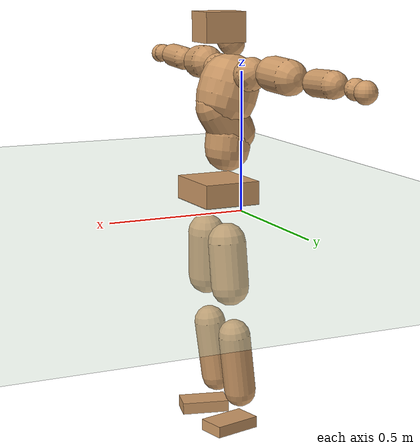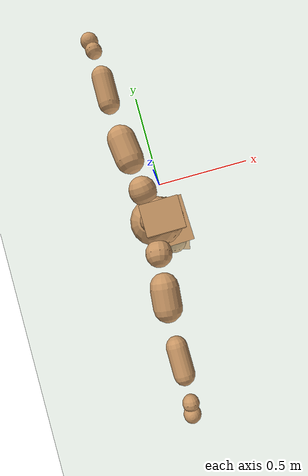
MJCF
<mujoco model="humanoid">
  <compiler coordinate="local" angle="radian"/>
  <default>
    <joint damping="0.0" armature="0.01" stiffness="0.0" limited="true"/>
    <geom conaffinity="1" condim="3" contype="7" margin="0.001" rgba="0.8 0.6 .4 1"/>
  </default>
  <asset>
    <texture type="skybox" builtin="gradient" rgb1=".4 .5 .6" rgb2="0 0 0" width="100" height="100"/>
    <texture builtin="flat" height="1278" mark="cross" markrgb="1 1 1" name="texgeom" random="0.01" rgb1="0.8 0.6 0.4" rgb2="0.8 0.6 0.4" type="cube" width="127"/>
    <texture builtin="checker" height="100" name="texplane" rgb1="0 0 0" rgb2="0.8 0.8 0.8" type="2d" width="100"/>
    <material name="MatPlane" reflectance="0.5" shininess="1" specular="1" texrepeat="60 60" texture="texplane"/>
    <material name="geom" texture="texgeom" texuniform="true"/>
  </asset>
  <worldbody>
    <light cutoff="100" diffuse="1 1 1" dir="-0 0 -1.3" directional="true" exponent="1" pos="0 0 1.3" specular=".1 .1 .1"/>
    <geom conaffinity="1" condim="3" name="floor" pos="0 0 0" rgba="0.8 0.9 0.8 1" size="100 100 .2" type="plane" material="MatPlane"/>
    <body name="Pelvis" pos="-0.0012 -0.2171 0.0524">
      <freejoint name="Pelvis"/>
      <geom type="box" contype="1" conaffinity="1" density="5359.375267" pos="-0.0047 -0.0001 -0.0125" size="0.1072 0.1245 0.044" quat="0.9999 0.0000 0.0000 0.0147" name="Pelvis"/>
      <body name="L_Hip" pos="0.005 0.0834 -0.0918">
        <joint name="L_Hip_x" type="hinge" pos="0 0 0" axis="1 0 0" stiffness="1600" damping="160" armature="0.02" range="-180.0000 180.0000"/>
        <joint name="L_Hip_y" type="hinge" pos="0 0 0" axis="0 1 0" stiffness="1600" damping="160" armature="0.02" range="-180.0000 180.0000"/>
        <joint name="L_Hip_z" type="hinge" pos="0 0 0" axis="0 0 1" stiffness="1600" damping="160" armature="0.02" range="-180.0000 180.0000"/>
        <geom type="capsule" contype="1" conaffinity="1" density="2040.816327" size="0.0708" fromto="-0.0042 0.0076 -0.1005 -0.0113 0.0203 -0.2703" name="L_Hip"/>
        <body name="L_Knee" pos="-0.0155 0.0279 -0.3708">
          <joint name="L_Knee_x" type="hinge" pos="0 0 0" axis="1 0 0" stiffness="1600" damping="160" armature="0.02" range="-180.0000 180.0000"/>
          <joint name="L_Knee_y" type="hinge" pos="0 0 0" axis="0 1 0" stiffness="1600" damping="160" armature="0.02" range="-180.0000 180.0000"/>
          <joint name="L_Knee_z" type="hinge" pos="0 0 0" axis="0 0 1" stiffness="1600" damping="160" armature="0.02" range="-180.0000 180.0000"/>
          <geom type="capsule" contype="1" conaffinity="1" density="1234.567901" size="0.0599" fromto="-0.0110 -0.0026 -0.0892 -0.0388 -0.0091 -0.3154" name="L_Knee"/>
          <body name="L_Ankle" pos="-0.0498 -0.0116 -0.4046">
            <joint name="L_Ankle_x" type="hinge" pos="0 0 0" axis="1 0 0" stiffness="1600" damping="160" armature="0.02" range="-180.0000 180.0000"/>
            <joint name="L_Ankle_y" type="hinge" pos="0 0 0" axis="0 1 0" stiffness="1600" damping="160" armature="0.02" range="-180.0000 180.0000"/>
            <joint name="L_Ankle_z" type="hinge" pos="0 0 0" axis="0 0 1" stiffness="1600" damping="160" armature="0.02" range="-180.0000 180.0000"/>
            <geom type="box" contype="1" conaffinity="1" density="999.999987" pos="0.0615 0.0149 -0.0302" size="0.0903 0.0537 0.0214" quat="0.9929 0.0000 0.0000 0.1186" name="L_Ankle"/>
            <body name="L_Toe" pos="0.123 0.0298 -0.0604">
              <joint name="L_Toe_x" type="hinge" pos="0 0 0" axis="1 0 0" stiffness="1000" damping="100" armature="0.02" range="-180.0000 180.0000"/>
              <joint name="L_Toe_y" type="hinge" pos="0 0 0" axis="0 1 0" stiffness="1000" damping="100" armature="0.02" range="-180.0000 180.0000"/>
              <joint name="L_Toe_z" type="hinge" pos="0 0 0" axis="0 0 1" stiffness="1000" damping="100" armature="0.02" range="-180.0000 180.0000"/>
              <geom type="box" contype="1" conaffinity="1" density="8440767.432787" pos="0.0000 0.0000 0.0300" size="0.0011 0.0026 0.0011" quat="0.9923 0.0000 0.0000 0.1243" name="L_Toe"/>
            </body>
          </body>
        </body>
      </body>
      <body name="R_Hip" pos="0.0075 -0.081 -0.0921">
        <joint name="R_Hip_x" type="hinge" pos="0 0 0" axis="1 0 0" stiffness="1600" damping="160" armature="0.02" range="-180.0000 180.0000"/>
        <joint name="R_Hip_y" type="hinge" pos="0 0 0" axis="0 1 0" stiffness="1600" damping="160" armature="0.02" range="-180.0000 180.0000"/>
        <joint name="R_Hip_z" type="hinge" pos="0 0 0" axis="0 0 1" stiffness="1600" damping="160" armature="0.02" range="-180.0000 180.0000"/>
        <geom type="capsule" contype="1" conaffinity="1" density="2040.816327" size="0.07" fromto="-0.0046 -0.0095 -0.0995 -0.0126 -0.0263 -0.2748" name="R_Hip"/>
        <body name="R_Knee" pos="-0.0172 -0.0358 -0.3743">
          <joint name="R_Knee_x" type="hinge" pos="0 0 0" axis="1 0 0" stiffness="1600" damping="160" armature="0.02" range="-180.0000 180.0000"/>
          <joint name="R_Knee_y" type="hinge" pos="0 0 0" axis="0 1 0" stiffness="1600" damping="160" armature="0.02" range="-180.0000 180.0000"/>
          <joint name="R_Knee_z" type="hinge" pos="0 0 0" axis="0 0 1" stiffness="1600" damping="160" armature="0.02" range="-180.0000 180.0000"/>
          <geom type="capsule" contype="1" conaffinity="1" density="1234.567901" size="0.0598" fromto="-0.0109 0.0026 -0.0891 -0.0385 0.0093 -0.3157" name="R_Knee"/>
          <body name="R_Ankle" pos="-0.0493 0.012 -0.4048">
            <joint name="R_Ankle_x" type="hinge" pos="0 0 0" axis="1 0 0" stiffness="1600" damping="160" armature="0.02" range="-180.0000 180.0000"/>
            <joint name="R_Ankle_y" type="hinge" pos="0 0 0" axis="0 1 0" stiffness="1600" damping="160" armature="0.02" range="-180.0000 180.0000"/>
            <joint name="R_Ankle_z" type="hinge" pos="0 0 0" axis="0 0 1" stiffness="1600" damping="160" armature="0.02" range="-180.0000 180.0000"/>
            <geom type="box" contype="1" conaffinity="1" density="1000.000019" pos="0.0639 -0.0150 -0.0252" size="0.0904 0.0514 0.0221" quat="0.9934 0.0000 0.0000 -0.1151" name="R_Ankle"/>
            <body name="R_Toe" pos="0.1278 -0.03 -0.0503">
              <joint name="R_Toe_x" type="hinge" pos="0 0 0" axis="1 0 0" stiffness="1000" damping="100" armature="0.02" range="-180.0000 180.0000"/>
              <joint name="R_Toe_y" type="hinge" pos="0 0 0" axis="0 1 0" stiffness="1000" damping="100" armature="0.02" range="-180.0000 180.0000"/>
              <joint name="R_Toe_z" type="hinge" pos="0 0 0" axis="0 0 1" stiffness="1000" damping="100" armature="0.02" range="-180.0000 180.0000"/>
              <geom type="box" contype="1" conaffinity="1" density="8184486.000995" pos="0.0000 0.0000 0.0276" size="0.001 0.0026 0.0012" quat="0.9944 0.0000 0.0000 -0.1061" name="R_Toe"/>
            </body>
          </body>
        </body>
      </body>
      <body name="Torso" pos="-0.0406 -0.0032 0.109">
        <joint name="Torso_x" type="hinge" pos="0 0 0" axis="1 0 0" stiffness="2000" damping="200" armature="0.02" range="-180.0000 180.0000"/>
        <joint name="Torso_y" type="hinge" pos="0 0 0" axis="0 1 0" stiffness="2000" damping="200" armature="0.02" range="-180.0000 180.0000"/>
        <joint name="Torso_z" type="hinge" pos="0 0 0" axis="0 0 1" stiffness="2000" damping="200" armature="0.02" range="-180.0000 180.0000"/>
        <geom type="capsule" contype="1" conaffinity="1" density="2040.816327" size="0.085" fromto="-0.0076 0.0026 0.0847 -0.0029 0.0010 0.0320" name="Torso"/>
        <body name="Spine" pos="-0.0105 0.0036 0.1167">
          <joint name="Spine_x" type="hinge" pos="0 0 0" axis="1 0 0" stiffness="2000" damping="200" armature="0.02" range="-180.0000 180.0000"/>
          <joint name="Spine_y" type="hinge" pos="0 0 0" axis="0 1 0" stiffness="2000" damping="200" armature="0.02" range="-180.0000 180.0000"/>
          <joint name="Spine_z" type="hinge" pos="0 0 0" axis="0 0 1" stiffness="2000" damping="200" armature="0.02" range="-180.0000 180.0000"/>
          <geom type="capsule" contype="1" conaffinity="1" density="2040.816327" size="0.0846" fromto="0.0464 0.0032 0.0707 -0.0141 -0.0010 -0.0215" name="Spine"/>
          <body name="Chest" pos="0.0323 0.0022 0.0492">
            <joint name="Chest_x" type="hinge" pos="0 0 0" axis="1 0 0" stiffness="2000" damping="200" armature="0.02" range="-180.0000 180.0000"/>
            <joint name="Chest_y" type="hinge" pos="0 0 0" axis="0 1 0" stiffness="2000" damping="200" armature="0.02" range="-180.0000 180.0000"/>
            <joint name="Chest_z" type="hinge" pos="0 0 0" axis="0 0 1" stiffness="2000" damping="200" armature="0.02" range="-180.0000 180.0000"/>
            <geom type="capsule" contype="1" conaffinity="1" density="2040.816327" size="0.1125" fromto="-0.0332 -0.0006 0.1075 -0.0177 -0.0003 0.0572" name="Chest"/>
            <body name="Neck" pos="-0.0615 -0.002 0.2303">
              <joint name="Neck_x" type="hinge" pos="0 0 0" axis="1 0 0" stiffness="1000" damping="100" armature="0.02" range="-180.0000 180.0000"/>
              <joint name="Neck_y" type="hinge" pos="0 0 0" axis="0 1 0" stiffness="1000" damping="100" armature="0.02" range="-180.0000 180.0000"/>
              <joint name="Neck_z" type="hinge" pos="0 0 0" axis="0 0 1" stiffness="1000" damping="100" armature="0.02" range="-180.0000 180.0000"/>
              <geom type="capsule" contype="1" conaffinity="1" density="1000" size="0.0462" fromto="0.0295 -0.0011 0.0356 0.0172 -0.0006 0.0207" name="Neck"/>
              <body name="Head" pos="0.0467 -0.0017 0.0563">
                <joint name="Head_x" type="hinge" pos="0 0 0" axis="1 0 0" stiffness="1000" damping="100" armature="0.02" range="-180.0000 180.0000"/>
                <joint name="Head_y" type="hinge" pos="0 0 0" axis="0 1 0" stiffness="1000" damping="100" armature="0.02" range="-180.0000 180.0000"/>
                <joint name="Head_z" type="hinge" pos="0 0 0" axis="0 0 1" stiffness="1000" damping="100" armature="0.02" range="-180.0000 180.0000"/>
                <geom type="box" contype="1" conaffinity="1" density="2250.000034" pos="0.0243 0.0001 0.0292" size="0.0786 0.0645 0.0557" quat="1.0000 0.0000 0.0000 0.0026" name="Head"/>
              </body>
            </body>
            <body name="L_Thorax" pos="-0.0435 0.0893 0.1329">
              <joint name="L_Thorax_x" type="hinge" pos="0 0 0" axis="1 0 0" stiffness="1000" damping="100" armature="0.02" range="-180.0000 180.0000"/>
              <joint name="L_Thorax_y" type="hinge" pos="0 0 0" axis="0 1 0" stiffness="1000" damping="100" armature="0.02" range="-180.0000 180.0000"/>
              <joint name="L_Thorax_z" type="hinge" pos="0 0 0" axis="0 0 1" stiffness="1000" damping="100" armature="0.02" range="-180.0000 180.0000"/>
              <geom type="capsule" contype="1" conaffinity="1" density="1000" size="0.0608" fromto="-0.0066 0.0566 0.0212 -0.0054 0.0468 0.0175" name="L_Thorax"/>
              <body name="L_Shoulder" pos="-0.012 0.1034 0.0387">
                <joint name="L_Shoulder_x" type="hinge" pos="0 0 0" axis="1 0 0" stiffness="1000" damping="100" armature="0.02" range="-720.0000 720.0000"/>
                <joint name="L_Shoulder_y" type="hinge" pos="0 0 0" axis="0 1 0" stiffness="1000" damping="100" armature="0.02" range="-720.0000 720.0000"/>
                <joint name="L_Shoulder_z" type="hinge" pos="0 0 0" axis="0 0 1" stiffness="1000" damping="100" armature="0.02" range="-720.0000 720.0000"/>
                <geom type="capsule" contype="1" conaffinity="1" density="1000" size="0.0632" fromto="-0.0116 0.0924 -0.0055 -0.0238 0.1902 -0.0113" name="L_Shoulder"/>
                <body name="L_Elbow" pos="-0.0354 0.2826 -0.0167">
                  <joint name="L_Elbow_x" type="hinge" pos="0 0 0" axis="1 0 0" stiffness="1000" damping="100" armature="0.02" range="-720.0000 720.0000"/>
                  <joint name="L_Elbow_y" type="hinge" pos="0 0 0" axis="0 1 0" stiffness="1000" damping="100" armature="0.02" range="-720.0000 720.0000"/>
                  <joint name="L_Elbow_z" type="hinge" pos="0 0 0" axis="0 0 1" stiffness="1000" damping="100" armature="0.02" range="-720.0000 720.0000"/>
                  <geom type="capsule" contype="1" conaffinity="1" density="1000" size="0.0469" fromto="0.0012 0.0768 0.0032 0.0032 0.1971 0.0083" name="L_Elbow"/>
                  <body name="L_Wrist" pos="0.0044 0.274 0.0115">
                    <joint name="L_Wrist_x" type="hinge" pos="0 0 0" axis="1 0 0" stiffness="600" damping="60" armature="0.02" range="-180.0000 180.0000"/>
                    <joint name="L_Wrist_y" type="hinge" pos="0 0 0" axis="0 1 0" stiffness="600" damping="60" armature="0.02" range="-180.0000 180.0000"/>
                    <joint name="L_Wrist_z" type="hinge" pos="0 0 0" axis="0 0 1" stiffness="600" damping="60" armature="0.02" range="-180.0000 180.0000"/>
                    <geom type="capsule" contype="1" conaffinity="1" density="1000" size="0.0362" fromto="-0.0076 0.0470 -0.0057 -0.0079 0.0490 -0.0060" name="L_Wrist"/>
                    <body name="L_Hand" pos="-0.0155 0.096 -0.0117">
                      <joint name="L_Hand_x" type="hinge" pos="0 0 0" axis="1 0 0" stiffness="600" damping="60" armature="0.02" range="-180.0000 180.0000"/>
                      <joint name="L_Hand_y" type="hinge" pos="0 0 0" axis="0 1 0" stiffness="600" damping="60" armature="0.02" range="-180.0000 180.0000"/>
                      <joint name="L_Hand_z" type="hinge" pos="0 0 0" axis="0 0 1" stiffness="600" damping="60" armature="0.02" range="-180.0000 180.0000"/>
                      <geom type="sphere" contype="1" conaffinity="1" density="1000" size="0.0385" pos="0.0000 0.0000 0.0000" name="L_Hand"/>
                    </body>
                  </body>
                </body>
              </body>
            </body>
            <body name="R_Thorax" pos="-0.0478 -0.09 0.1309">
              <joint name="R_Thorax_x" type="hinge" pos="0 0 0" axis="1 0 0" stiffness="1000" damping="100" armature="0.02" range="-180.0000 180.0000"/>
              <joint name="R_Thorax_y" type="hinge" pos="0 0 0" axis="0 1 0" stiffness="1000" damping="100" armature="0.02" range="-180.0000 180.0000"/>
              <joint name="R_Thorax_z" type="hinge" pos="0 0 0" axis="0 0 1" stiffness="1000" damping="100" armature="0.02" range="-180.0000 180.0000"/>
              <geom type="capsule" contype="1" conaffinity="1" density="1000" size="0.059" fromto="-0.0068 -0.0553 0.0194 -0.0062 -0.0501 0.0176" name="R_Thorax"/>
              <body name="R_Shoulder" pos="-0.013 -0.1055 0.037">
                <joint name="R_Shoulder_x" type="hinge" pos="0 0 0" axis="1 0 0" stiffness="1000" damping="100" armature="0.02" range="-720.0000 720.0000"/>
                <joint name="R_Shoulder_y" type="hinge" pos="0 0 0" axis="0 1 0" stiffness="1000" damping="100" armature="0.02" range="-720.0000 720.0000"/>
                <joint name="R_Shoulder_z" type="hinge" pos="0 0 0" axis="0 0 1" stiffness="1000" damping="100" armature="0.02" range="-720.0000 720.0000"/>
                <geom type="capsule" contype="1" conaffinity="1" density="1000" size="0.064" fromto="-0.0090 -0.0934 -0.0052 -0.0177 -0.1838 -0.0103" name="R_Shoulder"/>
                <body name="R_Elbow" pos="-0.0267 -0.2772 -0.0155">
                  <joint name="R_Elbow_x" type="hinge" pos="0 0 0" axis="1 0 0" stiffness="1000" damping="100" armature="0.02" range="-720.0000 720.0000"/>
                  <joint name="R_Elbow_y" type="hinge" pos="0 0 0" axis="0 1 0" stiffness="1000" damping="100" armature="0.02" range="-720.0000 720.0000"/>
                  <joint name="R_Elbow_z" type="hinge" pos="0 0 0" axis="0 0 1" stiffness="1000" damping="100" armature="0.02" range="-720.0000 720.0000"/>
                  <geom type="capsule" contype="1" conaffinity="1" density="1000" size="0.0465" fromto="0.0008 -0.0764 0.0038 0.0021 -0.1975 0.0097" name="R_Elbow"/>
                  <body name="R_Wrist" pos="0.0028 -0.2739 0.0135">
                    <joint name="R_Wrist_x" type="hinge" pos="0 0 0" axis="1 0 0" stiffness="600" damping="60" armature="0.02" range="-180.0000 180.0000"/>
                    <joint name="R_Wrist_y" type="hinge" pos="0 0 0" axis="0 1 0" stiffness="600" damping="60" armature="0.02" range="-180.0000 180.0000"/>
                    <joint name="R_Wrist_z" type="hinge" pos="0 0 0" axis="0 0 1" stiffness="600" damping="60" armature="0.02" range="-180.0000 180.0000"/>
                    <geom type="capsule" contype="1" conaffinity="1" density="1000" size="0.0364" fromto="-0.0062 -0.0466 -0.0043 -0.0064 -0.0486 -0.0044" name="R_Wrist"/>
                    <body name="R_Hand" pos="-0.0126 -0.0951 -0.0087">
                      <joint name="R_Hand_x" type="hinge" pos="0 0 0" axis="1 0 0" stiffness="600" damping="60" armature="0.02" range="-180.0000 180.0000"/>
                      <joint name="R_Hand_y" type="hinge" pos="0 0 0" axis="0 1 0" stiffness="600" damping="60" armature="0.02" range="-180.0000 180.0000"/>
                      <joint name="R_Hand_z" type="hinge" pos="0 0 0" axis="0 0 1" stiffness="600" damping="60" armature="0.02" range="-180.0000 180.0000"/>
                      <geom type="sphere" contype="1" conaffinity="1" density="1000" size="0.0381" pos="0.0000 0.0000 0.0000" name="R_Hand"/>
                    </body>
                  </body>
                </body>
              </body>
            </body>
          </body>
        </body>
      </body>
    </body>
  </worldbody>
  <actuator>
    <motor name="L_Hip_x" joint="L_Hip_x" gear="500"/>
    <motor name="L_Hip_y" joint="L_Hip_y" gear="500"/>
    <motor name="L_Hip_z" joint="L_Hip_z" gear="500"/>
    <motor name="L_Knee_x" joint="L_Knee_x" gear="500"/>
    <motor name="L_Knee_y" joint="L_Knee_y" gear="500"/>
    <motor name="L_Knee_z" joint="L_Knee_z" gear="500"/>
    <motor name="L_Ankle_x" joint="L_Ankle_x" gear="500"/>
    <motor name="L_Ankle_y" joint="L_Ankle_y" gear="500"/>
    <motor name="L_Ankle_z" joint="L_Ankle_z" gear="500"/>
    <motor name="L_Toe_x" joint="L_Toe_x" gear="500"/>
    <motor name="L_Toe_y" joint="L_Toe_y" gear="500"/>
    <motor name="L_Toe_z" joint="L_Toe_z" gear="500"/>
    <motor name="R_Hip_x" joint="R_Hip_x" gear="500"/>
    <motor name="R_Hip_y" joint="R_Hip_y" gear="500"/>
    <motor name="R_Hip_z" joint="R_Hip_z" gear="500"/>
    <motor name="R_Knee_x" joint="R_Knee_x" gear="500"/>
    <motor name="R_Knee_y" joint="R_Knee_y" gear="500"/>
    <motor name="R_Knee_z" joint="R_Knee_z" gear="500"/>
    <motor name="R_Ankle_x" joint="R_Ankle_x" gear="500"/>
    <motor name="R_Ankle_y" joint="R_Ankle_y" gear="500"/>
    <motor name="R_Ankle_z" joint="R_Ankle_z" gear="500"/>
    <motor name="R_Toe_x" joint="R_Toe_x" gear="500"/>
    <motor name="R_Toe_y" joint="R_Toe_y" gear="500"/>
    <motor name="R_Toe_z" joint="R_Toe_z" gear="500"/>
    <motor name="Torso_x" joint="Torso_x" gear="500"/>
    <motor name="Torso_y" joint="Torso_y" gear="500"/>
    <motor name="Torso_z" joint="Torso_z" gear="500"/>
    <motor name="Spine_x" joint="Spine_x" gear="500"/>
    <motor name="Spine_y" joint="Spine_y" gear="500"/>
    <motor name="Spine_z" joint="Spine_z" gear="500"/>
    <motor name="Chest_x" joint="Chest_x" gear="500"/>
    <motor name="Chest_y" joint="Chest_y" gear="500"/>
    <motor name="Chest_z" joint="Chest_z" gear="500"/>
    <motor name="Neck_x" joint="Neck_x" gear="500"/>
    <motor name="Neck_y" joint="Neck_y" gear="500"/>
    <motor name="Neck_z" joint="Neck_z" gear="500"/>
    <motor name="Head_x" joint="Head_x" gear="500"/>
    <motor name="Head_y" joint="Head_y" gear="500"/>
    <motor name="Head_z" joint="Head_z" gear="500"/>
    <motor name="L_Thorax_x" joint="L_Thorax_x" gear="500"/>
    <motor name="L_Thorax_y" joint="L_Thorax_y" gear="500"/>
    <motor name="L_Thorax_z" joint="L_Thorax_z" gear="500"/>
    <motor name="L_Shoulder_x" joint="L_Shoulder_x" gear="500"/>
    <motor name="L_Shoulder_y" joint="L_Shoulder_y" gear="500"/>
    <motor name="L_Shoulder_z" joint="L_Shoulder_z" gear="500"/>
    <motor name="L_Elbow_x" joint="L_Elbow_x" gear="500"/>
    <motor name="L_Elbow_y" joint="L_Elbow_y" gear="500"/>
    <motor name="L_Elbow_z" joint="L_Elbow_z" gear="500"/>
    <motor name="L_Wrist_x" joint="L_Wrist_x" gear="500"/>
    <motor name="L_Wrist_y" joint="L_Wrist_y" gear="500"/>
    <motor name="L_Wrist_z" joint="L_Wrist_z" gear="500"/>
    <motor name="L_Hand_x" joint="L_Hand_x" gear="500"/>
    <motor name="L_Hand_y" joint="L_Hand_y" gear="500"/>
    <motor name="L_Hand_z" joint="L_Hand_z" gear="500"/>
    <motor name="R_Thorax_x" joint="R_Thorax_x" gear="500"/>
    <motor name="R_Thorax_y" joint="R_Thorax_y" gear="500"/>
    <motor name="R_Thorax_z" joint="R_Thorax_z" gear="500"/>
    <motor name="R_Shoulder_x" joint="R_Shoulder_x" gear="500"/>
    <motor name="R_Shoulder_y" joint="R_Shoulder_y" gear="500"/>
    <motor name="R_Shoulder_z" joint="R_Shoulder_z" gear="500"/>
    <motor name="R_Elbow_x" joint="R_Elbow_x" gear="500"/>
    <motor name="R_Elbow_y" joint="R_Elbow_y" gear="500"/>
    <motor name="R_Elbow_z" joint="R_Elbow_z" gear="500"/>
    <motor name="R_Wrist_x" joint="R_Wrist_x" gear="500"/>
    <motor name="R_Wrist_y" joint="R_Wrist_y" gear="500"/>
    <motor name="R_Wrist_z" joint="R_Wrist_z" gear="500"/>
    <motor name="R_Hand_x" joint="R_Hand_x" gear="500"/>
    <motor name="R_Hand_y" joint="R_Hand_y" gear="500"/>
    <motor name="R_Hand_z" joint="R_Hand_z" gear="500"/>
  </actuator>
  <contact>
    <exclude body1="Torso" body2="Chest"/>
    <exclude body1="Head" body2="Chest"/>
    <exclude body1="R_Knee" body2="R_Toe"/>
    <exclude body1="R_Knee" body2="L_Ankle"/>
    <exclude body1="R_Knee" body2="L_Toe"/>
    <exclude body1="L_Knee" body2="L_Toe"/>
    <exclude body1="L_Knee" body2="R_Ankle"/>
    <exclude body1="L_Knee" body2="R_Toe"/>
    <exclude body1="L_Shoulder" body2="Chest"/>
    <exclude body1="R_Shoulder" body2="Chest"/>
  </contact>
  <sensor/>
  <size njmax="700" nconmax="700"/>
</mujoco>
